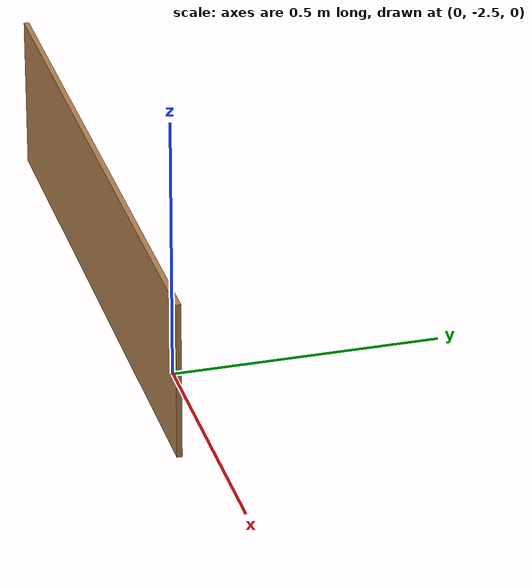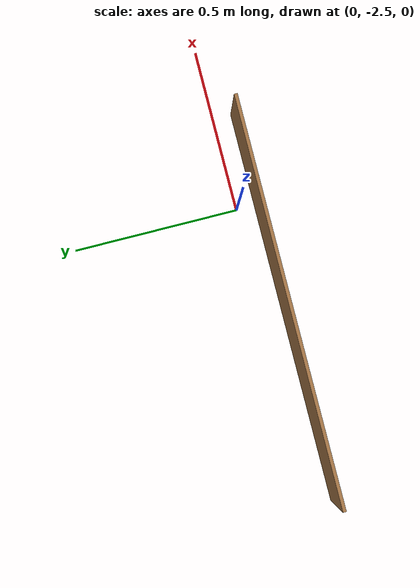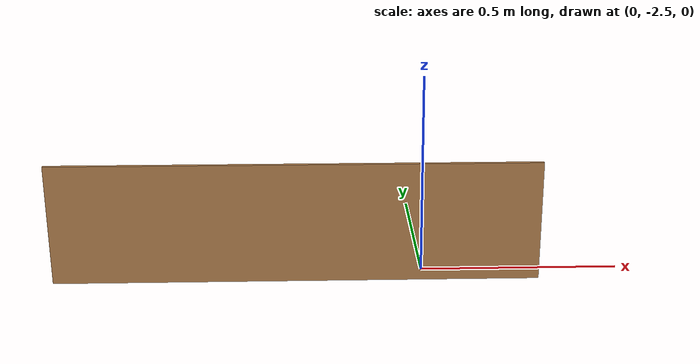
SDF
<?xml version='1.0'?>
<sdf version='1.7'>
  <model name='pared120'>
    <pose>-0.312 -1.283 0 0 -0 0</pose>
    <link name='Wall_10'>
      <collision name='Wall_10_Collision'>
        <geometry>
          <box>
            <size>1.2 0.01 0.3</size>
          </box>
        </geometry>
        <pose>0 0 0.15 0 -0 0</pose>
      </collision>
      <visual name='Wall_10_Visual'>
        <pose>0 0 0.15 0 -0 0</pose>
        <geometry>
          <box>
            <size>1.2 0.01 0.3</size>
          </box>
        </geometry>
        <material>
          <script>
            <uri>file://media/materials/scripts/gazebo.material</uri>
            <name>Gazebo/Wood</name>
          </script>
          <ambient>1 1 1 1</ambient>
        </material>
        <meta>
          <layer>0</layer>
        </meta>
      </visual>
      <pose>0 -1.278 0 0 -0 0</pose>
    </link>
    <static>1</static>
  </model>
</sdf>
